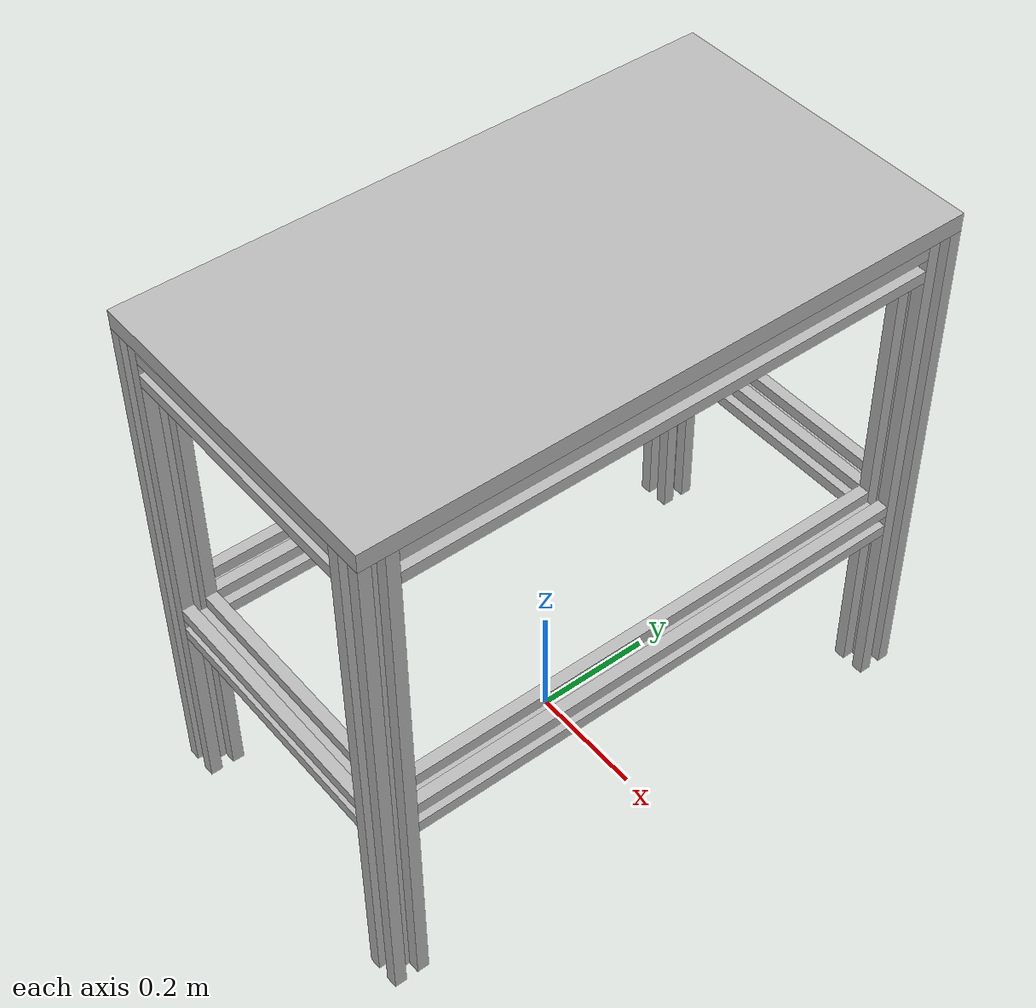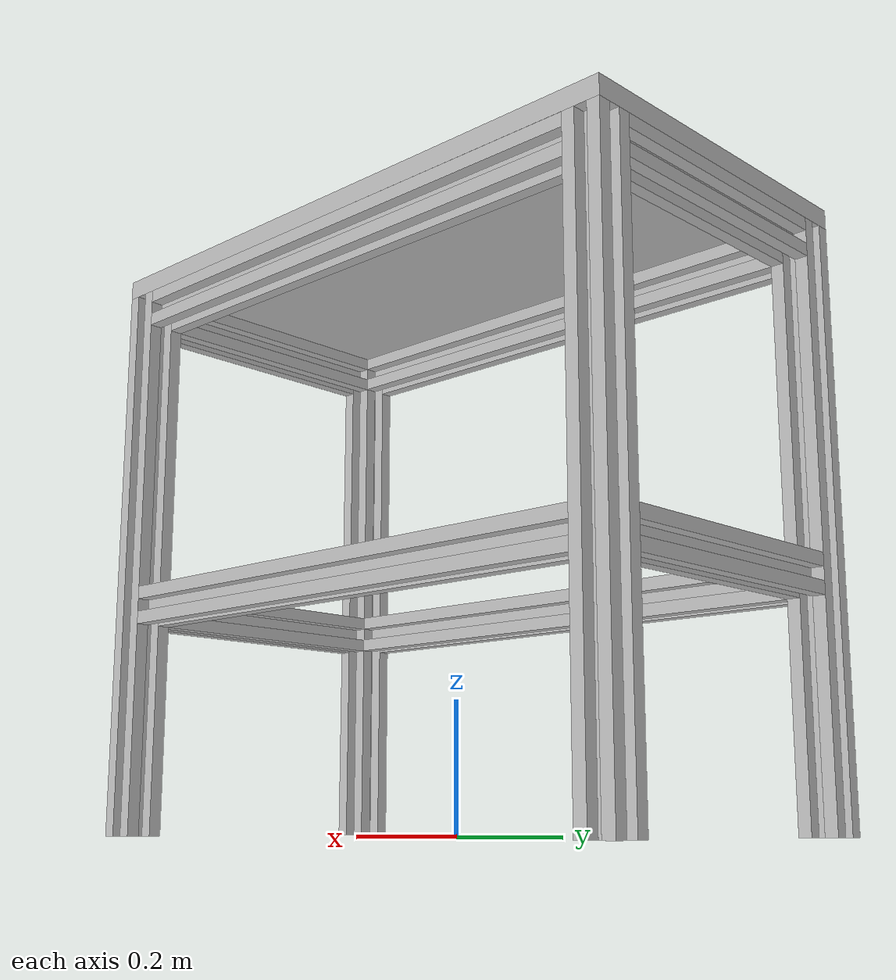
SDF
<?xml version='1.0'?>
<sdf version='1.4'>
  <model name="table_ipr">

    <include>
      <uri>model://table_side_top</uri>
      <pose>0 0 0 0 0 0</pose>

    </include>

    <include>
      <uri>model://table_leg</uri>
	<name>leg_1</name>
      <pose>0.245 0.470 0 0 0 0</pose>
    </include>

    <include>
      <uri>model://table_leg</uri>
	<name>leg_2</name>
      <pose>-0.245 -0.470 0 0 0 0</pose>
    </include>

    <include>
      <uri>model://table_leg</uri>
	<name>leg_3</name>
      <pose>-0.245 0.470 0 0 0 0</pose>
    </include>

    <include>
      <uri>model://table_leg</uri>
	<name>leg_4</name>
      <pose>0.245 -0.470 0 0 0 0</pose>
    </include>

    <joint name="table_glue" type="fixed">
	<child>table_top::link</child>
	<parent>leg_1::chassis1</parent>
    </joint>

    <joint name="table_glue2" type="fixed">
	<child>table_top::link</child>
	<parent>leg_2::chassis1</parent>
    </joint>

    <joint name="table_glue3" type="fixed">
	<child>table_top::link</child>
	<parent>leg_3::chassis1</parent>
    </joint>

    <joint name="table_glue4" type="fixed">
	<child>table_top::link</child>
	<parent>leg_4::chassis1</parent>
    </joint>

    <include>
      <uri>model://table_side_bar_small</uri>
	<name>bar_1</name>
      <pose>0 0.470 0.860 0 1.57 0</pose>
    </include>

    <include>
      <uri>model://table_side_bar_small</uri>
	<name>bar_2</name>
      <pose>0 0.470  0.360 0 1.57 0</pose>
    </include>

    <include>
      <uri>model://table_side_bar_small</uri>
	<name>bar_3</name>
      <pose>0 -0.470 0.860 0 1.57 0</pose>
    </include>

    <include>
      <uri>model://table_side_bar_small</uri>
	<name>bar_4</name>
      <pose>0 -0.470  0.360 0 1.57 0</pose>
    </include>

   <include>
      <uri>model://table_side_bar_large</uri>
      <name>bar_5</name>
      <pose>0.245 0 0.360 1.57 0 0</pose>
   </include>

   <include>
      <uri>model://table_side_bar_large</uri>
      <name>bar_6</name>
      <pose>-0.245 0 0.360 1.57 0 0</pose>
   </include>

   <include>
      <uri>model://table_side_bar_large</uri>
      <name>bar_7</name>
      <pose>0.245 0 0.860 1.57 0 0</pose>
   </include>

   <include>
      <uri>model://table_side_bar_large</uri>
      <name>bar_8</name>
      <pose>-0.245 0 0.860 1.57 0 0</pose>
   </include>

  </model>
</sdf>

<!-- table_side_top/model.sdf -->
<sdf version='1.4'>
  <model name="top">
  <static>true</static>

	<link name='link'>
            <collision name="surface">
        <pose>0 0 0.905 0 0 0</pose>
        <geometry>
          <box>
            <size>0.55 1 0.03</size>
          </box>
        </geometry>
        <surface>
          <friction>
            <ode>
              <mu>0.6</mu>
              <mu2>0.6</mu2>
            </ode>
          </friction>
        </surface>
      </collision>
      <visual name="visual1">
        <pose>0 0 0.905 0 0 0</pose>
        <geometry>
          <box>
            <size>0.55 1 0.03</size>
          </box>
        </geometry>

      </visual>

   </link>
  </model>
</sdf>

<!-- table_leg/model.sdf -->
<sdf version='1.4'>
  <model name="top">
  <static>true</static>

	<link name='chassis1'>
            <collision name="surface">
        <pose>0 0 0.445 0 0 0</pose>
        <geometry>
          <box>
            <size>0.02 0.02 0.89</size>
          </box>
        </geometry>
        <surface>
          <friction>
            <ode>
              <mu>0.6</mu>
              <mu2>0.6</mu2>
            </ode>
          </friction>
        </surface>
      </collision>
      <visual name="visual1">
        <pose>0 0 0.445 0 0 0</pose>
        <geometry>
          <box>
            <size>0.02 0.02 0.89</size>
          </box>
        </geometry>

      </visual>
</link>

<link name='chassis2'>
            <collision name="surface">
        <pose>0.02 0.02 0.445 0 0 0</pose>
        <geometry>
          <box>
            <size>0.02 0.02 0.89</size>
          </box>
        </geometry>
        <surface>
          <friction>
            <ode>
              <mu>0.6</mu>
              <mu2>0.6</mu2>
            </ode>
          </friction>
        </surface>
      </collision>
      <visual name="visual1">
        <pose>0.02 0.02 0.445 0 0 0</pose>
        <geometry>
          <box>
            <size>0.02 0.02 0.89</size>
          </box>
        </geometry>

      </visual>
</link>

<link name='chassis3'>
            <collision name="surface">
        <pose>-0.02 0.02 0.445 0 0 0</pose>
        <geometry>
          <box>
            <size>0.02 0.02 0.89</size>
          </box>
        </geometry>
        <surface>
          <friction>
            <ode>
              <mu>0.6</mu>
              <mu2>0.6</mu2>
            </ode>
          </friction>
        </surface>
      </collision>
      <visual name="visual1">
        <pose>-0.02 0.02 0.445 0 0 0</pose>
        <geometry>
          <box>
            <size>0.02 0.02 0.89</size>
          </box>
        </geometry>

      </visual>
</link>

	<link name='chassis4'>
            <collision name="surface">
        <pose>-0.02 -0.02 0.445 0 0 0</pose>
        <geometry>
          <box>
            <size>0.02 0.02 0.89</size>
          </box>
        </geometry>
        <surface>
          <friction>
            <ode>
              <mu>0.6</mu>
              <mu2>0.6</mu2>
            </ode>
          </friction>
        </surface>
      </collision>
      <visual name="visual1">
        <pose>-0.02 -0.02 0.445 0 0 0</pose>
        <geometry>
          <box>
            <size>0.02 0.02 0.89</size>
          </box>
        </geometry>

      </visual>
</link>

<link name='chassis5'>
            <collision name="surface">
        <pose>0.02 -0.02 0.445 0 0 0</pose>
        <geometry>
          <box>
            <size>0.02 0.02 0.89</size>
          </box>
        </geometry>
        <surface>
          <friction>
            <ode>
              <mu>0.6</mu>
              <mu2>0.6</mu2>
            </ode>
          </friction>
        </surface>
      </collision>
      <visual name="visual1">
        <pose>0.02 -0.02 0.445 0 0 0</pose>
        <geometry>
          <box>
            <size>0.02 0.02 0.89</size>
          </box>
        </geometry>

      </visual>
</link>

  </model>
</sdf>

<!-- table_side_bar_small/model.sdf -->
<sdf version='1.4'>
  <model name="bar">
  <static>true</static>

	<link name='chassis1'>
            <collision name="surface">
        <pose>0 0 0 0 0 0</pose>
        <geometry>
          <box>
            <size>0.02 0.02 0.43</size>
          </box>
        </geometry>
        <surface>
          <friction>
            <ode>
              <mu>0.6</mu>
              <mu2>0.6</mu2>
            </ode>
          </friction>
        </surface>
      </collision>
      <visual name="visual1">
        <pose>0 0 0 0 0 0</pose>
        <geometry>
          <box>
            <size>0.02 0.02 0.43</size>
          </box>
        </geometry>

      </visual>
</link>

<link name='chassis2'>
            <collision name="surface">
        <pose>0.02 0.02 0 0 0 0</pose>
        <geometry>
          <box>
            <size>0.02 0.02 0.43</size>
          </box>
        </geometry>
        <surface>
          <friction>
            <ode>
              <mu>0.6</mu>
              <mu2>0.6</mu2>
            </ode>
          </friction>
        </surface>
      </collision>
      <visual name="visual1">
        <pose>0.02 0.02 0.0 0 0 0</pose>
        <geometry>
          <box>
            <size>0.02 0.02 0.43</size>
          </box>
        </geometry>

      </visual>
</link>

<link name='chassis3'>
            <collision name="surface">
        <pose>-0.02 0.02 0.0 0 0 0</pose>
        <geometry>
          <box>
            <size>0.02 0.02 0.43</size>
          </box>
        </geometry>
        <surface>
          <friction>
            <ode>
              <mu>0.6</mu>
              <mu2>0.6</mu2>
            </ode>
          </friction>
        </surface>
      </collision>
      <visual name="visual1">
        <pose>-0.02 0.02 0 0 0 0</pose>
        <geometry>
          <box>
            <size>0.02 0.02 0.43</size>
          </box>
        </geometry>

      </visual>
</link>

	<link name='chassis4'>
            <collision name="surface">
        <pose>-0.02 -0.02 0 0 0 0</pose>
        <geometry>
          <box>
            <size>0.02 0.02 0.43</size>
          </box>
        </geometry>
        <surface>
          <friction>
            <ode>
              <mu>0.6</mu>
              <mu2>0.6</mu2>
            </ode>
          </friction>
        </surface>
      </collision>
      <visual name="visual1">
        <pose>-0.02 -0.02 0 0 0 0</pose>
        <geometry>
          <box>
            <size>0.02 0.02 0.43</size>
          </box>
        </geometry>

      </visual>
</link>

<link name='chassis5'>
            <collision name="surface">
        <pose>0.02 -0.02 0 0 0 0</pose>
        <geometry>
          <box>
            <size>0.02 0.02 0.43</size>
          </box>
        </geometry>
        <surface>
          <friction>
            <ode>
              <mu>0.6</mu>
              <mu2>0.6</mu2>
            </ode>
          </friction>
        </surface>
      </collision>
      <visual name="visual1">
        <pose>0.02 -0.02 0 0 0 0</pose>
        <geometry>
          <box>
            <size>0.02 0.02 0.43</size>
          </box>
        </geometry>

      </visual>
</link>

  </model>
</sdf>

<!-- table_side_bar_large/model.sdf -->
<sdf version='1.4'>
  <model name="bar">
  <static>true</static>

	<link name='chassis1'>
            <collision name="surface">
        <pose>0 0 0 0 0 0</pose>
        <geometry>
          <box>
            <size>0.02 0.02 0.88</size>
          </box>
        </geometry>
        <surface>
          <friction>
            <ode>
              <mu>0.6</mu>
              <mu2>0.6</mu2>
            </ode>
          </friction>
        </surface>
      </collision>
      <visual name="visual1">
        <pose>0 0 0 0 0 0</pose>
        <geometry>
          <box>
            <size>0.02 0.02 0.88</size>
          </box>
        </geometry>

      </visual>
</link>

<link name='chassis2'>
            <collision name="surface">
        <pose>0.02 0.02 0 0 0 0</pose>
        <geometry>
          <box>
            <size>0.02 0.02 0.88</size>
          </box>
        </geometry>
        <surface>
          <friction>
            <ode>
              <mu>0.6</mu>
              <mu2>0.6</mu2>
            </ode>
          </friction>
        </surface>
      </collision>
      <visual name="visual1">
        <pose>0.02 0.02 0.0 0 0 0</pose>
        <geometry>
          <box>
            <size>0.02 0.02 0.88</size>
          </box>
        </geometry>

      </visual>
</link>

<link name='chassis3'>
            <collision name="surface">
        <pose>-0.02 0.02 0.0 0 0 0</pose>
        <geometry>
          <box>
            <size>0.02 0.02 0.88</size>
          </box>
        </geometry>
        <surface>
          <friction>
            <ode>
              <mu>0.6</mu>
              <mu2>0.6</mu2>
            </ode>
          </friction>
        </surface>
      </collision>
      <visual name="visual1">
        <pose>-0.02 0.02 0 0 0 0</pose>
        <geometry>
          <box>
            <size>0.02 0.02 0.88</size>
          </box>
        </geometry>

      </visual>
</link>

	<link name='chassis4'>
            <collision name="surface">
        <pose>-0.02 -0.02 0 0 0 0</pose>
        <geometry>
          <box>
            <size>0.02 0.02 0.88</size>
          </box>
        </geometry>
        <surface>
          <friction>
            <ode>
              <mu>0.6</mu>
              <mu2>0.6</mu2>
            </ode>
          </friction>
        </surface>
      </collision>
      <visual name="visual1">
        <pose>-0.02 -0.02 0 0 0 0</pose>
        <geometry>
          <box>
            <size>0.02 0.02 0.88</size>
          </box>
        </geometry>

      </visual>
</link>

<link name='chassis5'>
            <collision name="surface">
        <pose>0.02 -0.02 0 0 0 0</pose>
        <geometry>
          <box>
            <size>0.02 0.02 0.88</size>
          </box>
        </geometry>
        <surface>
          <friction>
            <ode>
              <mu>0.6</mu>
              <mu2>0.6</mu2>
            </ode>
          </friction>
        </surface>
      </collision>
      <visual name="visual1">
        <pose>0.02 -0.02 0 0 0 0</pose>
        <geometry>
          <box>
            <size>0.02 0.02 0.88</size>
          </box>
        </geometry>

      </visual>
</link>

  </model>
</sdf>
